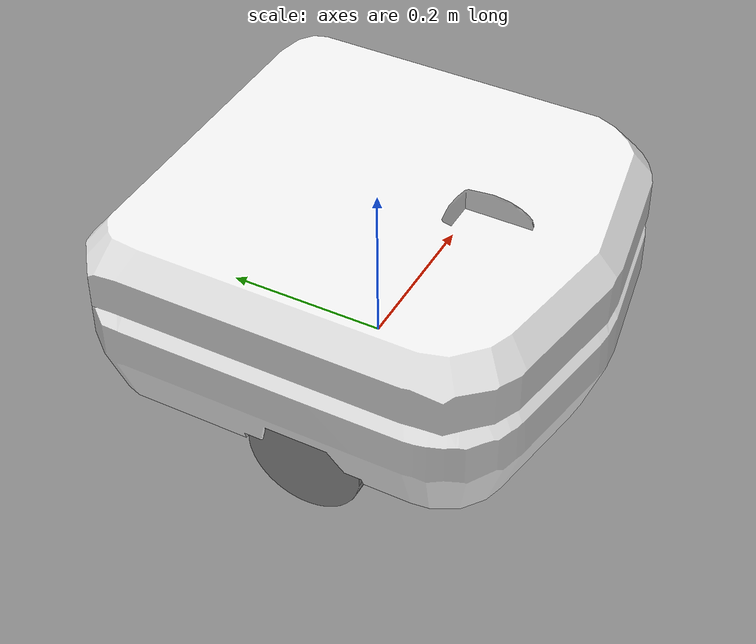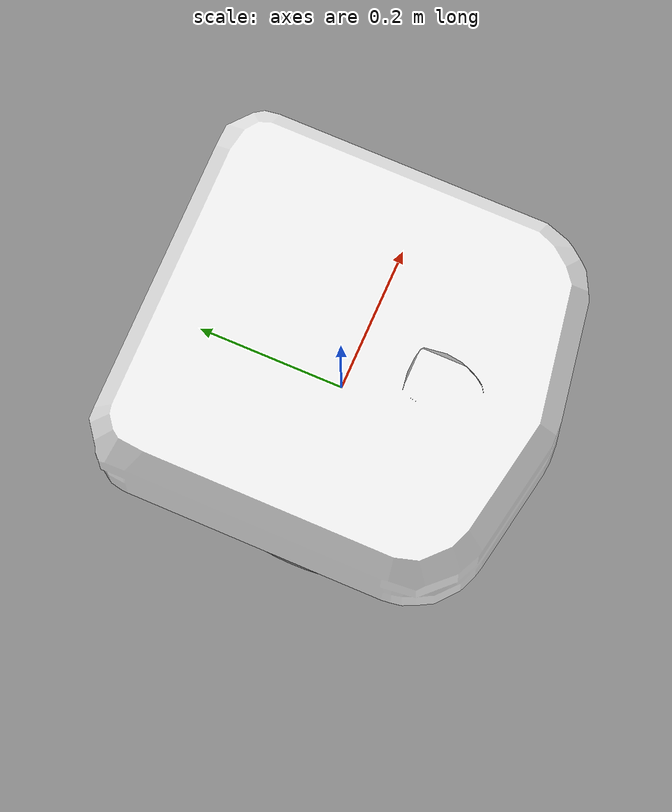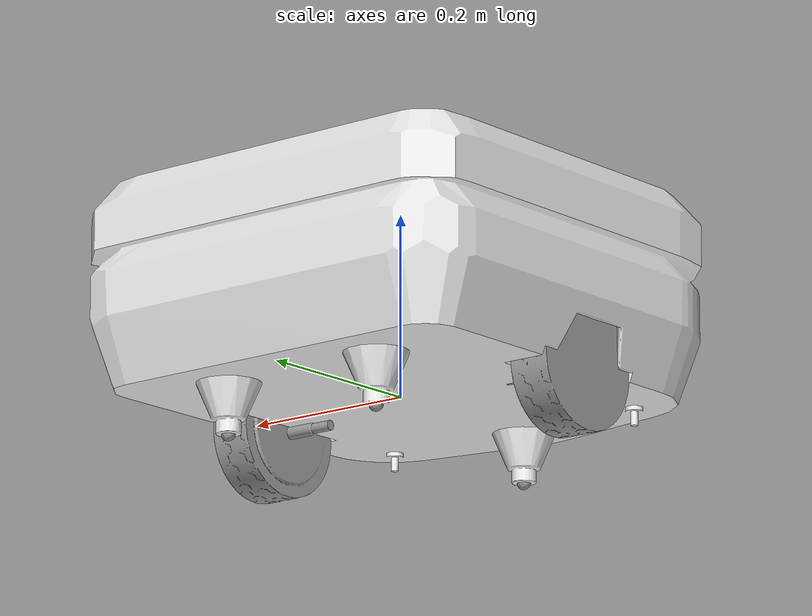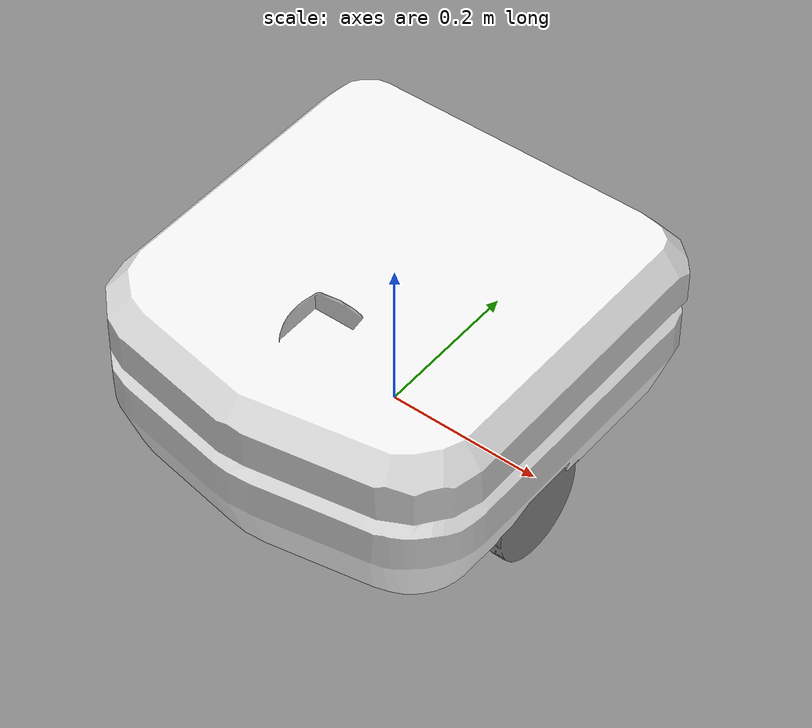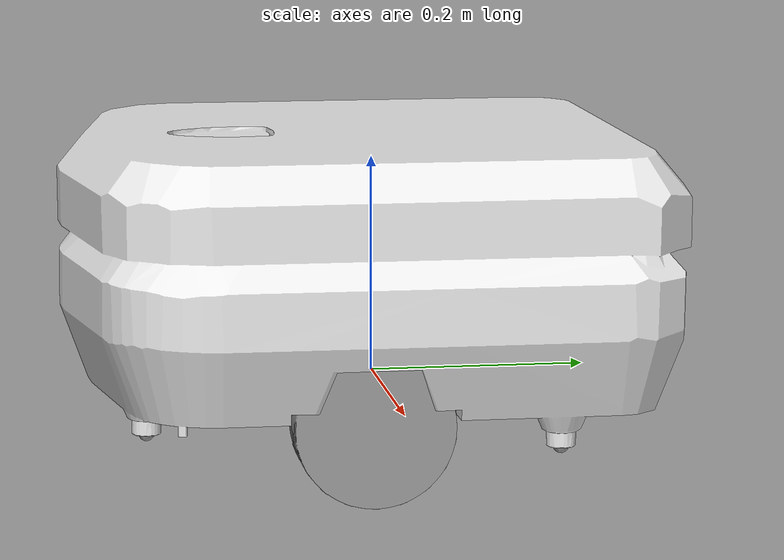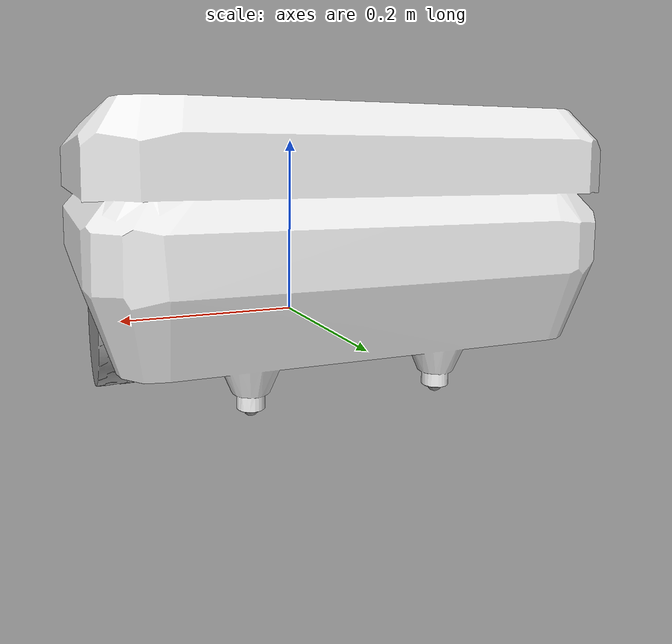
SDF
<?xml version='1.0'?>
<sdf version='1.7'>
  <plugin name="differential_drive_controller" filename="libgazebo_ros_diff_drive.so">
    <ros>
      <namespace>/</namespace>
      <argument>cmd_vel:=cmd_vel</argument>
    </ros>
    <left_joint>left_wheel_joint</left_joint>
    <right_joint>right_wheel_joint</right_joint>
    <wheel_separation>0.5</wheel_separation>
    <wheel_diameter>0.3</wheel_diameter>
    <torque>15</torque>385
    <command_topic>cmd_vel</command_topic>

    <max_wheel_torque>200</max_wheel_torque>
    <max_wheel_acceleration>10.0</max_wheel_acceleration>

    <odometry_frame>odom</odometry_frame>
    <robot_base_frame>base_link</robot_base_frame>
    <publish_odom>true</publish_odom>
    <publish_odom_tf>true</publish_odom_tf>
    <publish_wheel_tf>true</publish_wheel_tf>
  </plugin>

  <model name='cudatech_car'>
    <link name='link_0'>
      <inertial>
        <mass>5</mass>
        <inertia>
          <ixx>0</ixx>
          <ixy>0</ixy>
          <ixz>0</ixz>
          <iyy>0</iyy>
          <iyz>0</iyz>
          <izz>0</izz>
        </inertia>
        <pose>0 0 0 0 -0 0</pose>
      </inertial>
      <pose>0 0 0 1.5708 -0 0</pose>
      <gravity>1</gravity>
      <self_collide>1</self_collide>
      <kinematic>0</kinematic>
      <enable_wind>0</enable_wind>
      <visual name='visual'>
        <pose>0 0 0 0 -0 0</pose>
        <geometry>
          <mesh>
            <uri>/home/cudatech/ros2_ws/src/cudatech_description/meshes/chasis.stl</uri>
            <scale>0.001 0.001 0.001</scale>
          </mesh>
        </geometry>
        <material>
          <lighting>1</lighting>
          <script>
            <uri>file://media/materials/scripts/gazebo.material</uri>
            <name>Gazebo/White</name>
          </script>
          <shader type='pixel'>
            <normal_map>__default__</normal_map>
          </shader>
          <ambient>0.3 0.3 0.3 1</ambient>
          <diffuse>0.7 0.7 0.7 1</diffuse>
          <specular>0.01 0.01 0.01 1</specular>
          <emissive>0 0 0 1</emissive>
        </material>
        <transparency>0</transparency>
        <cast_shadows>1</cast_shadows>
      </visual>
      <collision name='collision'>
        <laser_retro>0</laser_retro>
        <max_contacts>10</max_contacts>
        <pose>0 0 0 0 -0 0</pose>
        <geometry>
          <mesh>
            <uri>/home/cudatech/ros2_ws/src/cudatech_description/meshes/chasis.stl</uri>
            <scale>0.001 0.001 0.001</scale>
          </mesh>
        </geometry>
        <surface>
          <friction>
            <ode>
              <mu>1</mu>
              <mu2>1</mu2>
              <fdir1>0 0 0</fdir1>
              <slip1>0</slip1>
              <slip2>0</slip2>
            </ode>
            <torsional>
              <coefficient>1</coefficient>
              <patch_radius>0</patch_radius>
              <surface_radius>0</surface_radius>
              <use_patch_radius>1</use_patch_radius>
              <ode>
                <slip>0</slip>
              </ode>
            </torsional>
          </friction>
          <bounce>
            <restitution_coefficient>0</restitution_coefficient>
            <threshold>1e+06</threshold>
          </bounce>
          <contact>
            <collide_without_contact>0</collide_without_contact>
            <collide_without_contact_bitmask>1</collide_without_contact_bitmask>
            <collide_bitmask>1</collide_bitmask>
            <ode>
              <soft_cfm>0</soft_cfm>
              <soft_erp>0.2</soft_erp>
              <kp>1e+13</kp>
              <kd>1</kd>
              <max_vel>0.01</max_vel>
              <min_depth>0</min_depth>
            </ode>
            <bullet>
              <split_impulse>1</split_impulse>
              <split_impulse_penetration_threshold>-0.01</split_impulse_penetration_threshold>
              <soft_cfm>0</soft_cfm>
              <soft_erp>0.2</soft_erp>
              <kp>1e+13</kp>
              <kd>1</kd>
            </bullet>
          </contact>
        </surface>
      </collision>
    </link>
    <link name='link_1'>
      <inertial>
        <mass>1</mass>
        <inertia>
          <ixx>0</ixx>
          <ixy>0</ixy>
          <ixz>0</ixz>
          <iyy>0</iyy>
          <iyz>0</iyz>
          <izz>0</izz>
        </inertia>
        <pose>0 0 0 0 -0 0</pose>
      </inertial>
      <pose>-0.2 -0.028704 0.017 -1.5708 0 1.5708</pose>
      <gravity>1</gravity>
      <self_collide>1</self_collide>
      <kinematic>0</kinematic>
      <enable_wind>0</enable_wind>
      <visual name='visual'>
        <pose>0 0 0 0 -0 0</pose>
        <geometry>
          <mesh>
            <uri>/home/cudatech/ros2_ws/src/cudatech_description/meshes/wheel.stl</uri>
            <scale>0.001 0.001 0.001</scale>
          </mesh>
        </geometry>
        <material>
          <lighting>1</lighting>
          <script>
            <uri>file://media/materials/scripts/gazebo.material</uri>
            <name>Gazebo/Grey</name>
          </script>
          <shader type='pixel'>
            <normal_map>__default__</normal_map>
          </shader>
          <ambient>0.3 0.3 0.3 1</ambient>
          <diffuse>0.7 0.7 0.7 1</diffuse>
          <specular>0.01 0.01 0.01 1</specular>
          <emissive>0 0 0 1</emissive>
        </material>
        <transparency>0</transparency>
        <cast_shadows>1</cast_shadows>
      </visual>
      <collision name='collision'>
        <laser_retro>0</laser_retro>
        <max_contacts>10</max_contacts>
        <pose>0 0 0 0 -0 0</pose>
        <geometry>
          <mesh>
            <uri>/home/cudatech/ros2_ws/src/cudatech_description/meshes/wheel.stl</uri>
            <scale>0.001 0.001 0.001</scale>
          </mesh>
        </geometry>
        <surface>
          <friction>
            <ode>
              <mu>1</mu>
              <mu2>1</mu2>
              <fdir1>0 0 0</fdir1>
              <slip1>0</slip1>
              <slip2>0</slip2>
            </ode>
            <torsional>
              <coefficient>1</coefficient>
              <patch_radius>0</patch_radius>
              <surface_radius>0</surface_radius>
              <use_patch_radius>1</use_patch_radius>
              <ode>
                <slip>0</slip>
              </ode>
            </torsional>
          </friction>
          <bounce>
            <restitution_coefficient>0</restitution_coefficient>
            <threshold>1e+06</threshold>
          </bounce>
          <contact>
            <collide_without_contact>0</collide_without_contact>
            <collide_without_contact_bitmask>1</collide_without_contact_bitmask>
            <collide_bitmask>1</collide_bitmask>
            <ode>
              <soft_cfm>0</soft_cfm>
              <soft_erp>0.2</soft_erp>
              <kp>1e+13</kp>
              <kd>1</kd>
              <max_vel>0.01</max_vel>
              <min_depth>0</min_depth>
            </ode>
            <bullet>
              <split_impulse>1</split_impulse>
              <split_impulse_penetration_threshold>-0.01</split_impulse_penetration_threshold>
              <soft_cfm>0</soft_cfm>
              <soft_erp>0.2</soft_erp>
              <kp>1e+13</kp>
              <kd>1</kd>
            </bullet>
          </contact>
        </surface>
      </collision>
    </link>
    <link name='link_1_clone'>
      <inertial>
        <mass>1</mass>
        <inertia>
          <ixx>0</ixx>
          <ixy>0</ixy>
          <ixz>0</ixz>
          <iyy>0</iyy>
          <iyz>0</iyz>
          <izz>0</izz>
        </inertia>
        <pose>0 0 0 0 -0 0</pose>
      </inertial>
      <pose>0.2 -0.028704 -0.0175 1.5708 -0 1.5708</pose>
      <gravity>1</gravity>
      <self_collide>1</self_collide>
      <kinematic>0</kinematic>
      <enable_wind>0</enable_wind>
      <visual name='visual'>
        <pose>0 0 0 0 -0 0</pose>
        <geometry>
          <mesh>
            <uri>/home/cudatech/ros2_ws/src/cudatech_description/meshes/wheel.stl</uri>
            <scale>0.001 0.001 0.001</scale>
          </mesh>
        </geometry>
        <material>
          <lighting>1</lighting>
          <script>
            <uri>file://media/materials/scripts/gazebo.material</uri>
            <name>Gazebo/Grey</name>
          </script>
          <shader type='pixel'>
            <normal_map>__default__</normal_map>
          </shader>
          <ambient>0.3 0.3 0.3 1</ambient>
          <diffuse>0.7 0.7 0.7 1</diffuse>
          <specular>0.01 0.01 0.01 1</specular>
          <emissive>0 0 0 1</emissive>
        </material>
        <transparency>0</transparency>
        <cast_shadows>1</cast_shadows>
      </visual>
      <collision name='collision'>
        <laser_retro>0</laser_retro>
        <max_contacts>10</max_contacts>
        <pose>0 0 0 0 -0 0</pose>
        <geometry>
          <mesh>
            <uri>/home/cudatech/ros2_ws/src/cudatech_description/meshes/wheel.stl</uri>
            <scale>0.001 0.001 0.001</scale>
          </mesh>
        </geometry>
        <surface>
          <friction>
            <ode>
              <mu>1</mu>
              <mu2>1</mu2>
              <fdir1>0 0 0</fdir1>
              <slip1>0</slip1>
              <slip2>0</slip2>
            </ode>
            <torsional>
              <coefficient>1</coefficient>
              <patch_radius>0</patch_radius>
              <surface_radius>0</surface_radius>
              <use_patch_radius>1</use_patch_radius>
              <ode>
                <slip>0</slip>
              </ode>
            </torsional>
          </friction>
          <bounce>
            <restitution_coefficient>0</restitution_coefficient>
            <threshold>1e+06</threshold>
          </bounce>
          <contact>
            <collide_without_contact>0</collide_without_contact>
            <collide_without_contact_bitmask>1</collide_without_contact_bitmask>
            <collide_bitmask>1</collide_bitmask>
            <ode>
              <soft_cfm>0</soft_cfm>
              <soft_erp>0.2</soft_erp>
              <kp>1e+13</kp>
              <kd>1</kd>
              <max_vel>0.01</max_vel>
              <min_depth>0</min_depth>
            </ode>
            <bullet>
              <split_impulse>1</split_impulse>
              <split_impulse_penetration_threshold>-0.01</split_impulse_penetration_threshold>
              <soft_cfm>0</soft_cfm>
              <soft_erp>0.2</soft_erp>
              <kp>1e+13</kp>
              <kd>1</kd>
            </bullet>
          </contact>
        </surface>
      </collision>
    </link>
    <link name='link_2'>
      <inertial>
        <mass>0.5</mass>
        <inertia>
          <ixx>0.166667</ixx>
          <ixy>0</ixy>
          <ixz>0</ixz>
          <iyy>0.166667</iyy>
          <iyz>0</iyz>
          <izz>0.166667</izz>
        </inertia>
        <pose>0 0 0 0 -0 0</pose>
      </inertial>
      <pose>-0 -0.21 -0.054 0 -0 0</pose>
      <gravity>1</gravity>
      <self_collide>1</self_collide>
      <kinematic>0</kinematic>
      <enable_wind>0</enable_wind>
      <visual name='visual'>
        <pose>0 0 0 0 -0 0</pose>
        <geometry>
          <mesh>
            <uri>/home/cudatech/ros2_ws/src/cudatech_description/meshes/drunk_whell.stl</uri>
            <scale>0.001 0.001 0.001</scale>
          </mesh>
        </geometry>
        <material>
          <lighting>1</lighting>
          <script>
            <uri>file://media/materials/scripts/gazebo.material</uri>
            <name>Gazebo/Grey</name>
          </script>
          <shader type='pixel'>
            <normal_map>__default__</normal_map>
          </shader>
          <ambient>0.3 0.3 0.3 1</ambient>
          <diffuse>0.7 0.7 0.7 1</diffuse>
          <specular>0.01 0.01 0.01 1</specular>
          <emissive>0 0 0 1</emissive>
        </material>
        <transparency>0</transparency>
        <cast_shadows>1</cast_shadows>
      </visual>
      <collision name='collision'>
        <laser_retro>0</laser_retro>
        <max_contacts>10</max_contacts>
        <pose>0 0 0 0 -0 0</pose>
        <geometry>
          <mesh>
            <uri>/home/cudatech/ros2_ws/src/cudatech_description/meshes/drunk_whell.stl</uri>
            <scale>0.001 0.001 0.001</scale>
          </mesh>
        </geometry>
        <surface>
          <friction>
            <ode>
              <mu>1</mu>
              <mu2>1</mu2>
              <fdir1>0 0 0</fdir1>
              <slip1>0</slip1>
              <slip2>0</slip2>
            </ode>
            <torsional>
              <coefficient>1</coefficient>
              <patch_radius>0</patch_radius>
              <surface_radius>0</surface_radius>
              <use_patch_radius>1</use_patch_radius>
              <ode>
                <slip>0</slip>
              </ode>
            </torsional>
          </friction>
          <bounce>
            <restitution_coefficient>0</restitution_coefficient>
            <threshold>1e+06</threshold>
          </bounce>
          <contact>
            <collide_without_contact>0</collide_without_contact>
            <collide_without_contact_bitmask>1</collide_without_contact_bitmask>
            <collide_bitmask>1</collide_bitmask>
            <ode>
              <soft_cfm>0</soft_cfm>
              <soft_erp>0.2</soft_erp>
              <kp>1e+13</kp>
              <kd>1</kd>
              <max_vel>0.01</max_vel>
              <min_depth>0</min_depth>
            </ode>
            <bullet>
              <split_impulse>1</split_impulse>
              <split_impulse_penetration_threshold>-0.01</split_impulse_penetration_threshold>
              <soft_cfm>0</soft_cfm>
              <soft_erp>0.2</soft_erp>
              <kp>1e+13</kp>
              <kd>1</kd>
            </bullet>
          </contact>
        </surface>
      </collision>
    </link>
    <link name='link_2_clone'>
      <inertial>
        <mass>0.5</mass>
        <inertia>
          <ixx>0.166667</ixx>
          <ixy>0</ixy>
          <ixz>0</ixz>
          <iyy>0.166667</iyy>
          <iyz>0</iyz>
          <izz>0.166667</izz>
        </inertia>
        <pose>0 0 0 0 -0 0</pose>
      </inertial>
      <pose>-0.1 0.16 -0.054 0.068559 0.025349 -0.003125</pose>
      <gravity>1</gravity>
      <self_collide>1</self_collide>
      <kinematic>0</kinematic>
      <enable_wind>0</enable_wind>
      <visual name='visual'>
        <pose>0 0 0 0 -0 0</pose>
        <geometry>
          <mesh>
            <uri>/home/cudatech/ros2_ws/src/cudatech_description/meshes/drunk_whell.stl</uri>
            <scale>0.001 0.001 0.001</scale>
          </mesh>
        </geometry>
        <material>
          <lighting>1</lighting>
          <script>
            <uri>file://media/materials/scripts/gazebo.material</uri>
            <name>Gazebo/Grey</name>
          </script>
          <shader type='pixel'>
            <normal_map>__default__</normal_map>
          </shader>
          <ambient>0.3 0.3 0.3 1</ambient>
          <diffuse>0.7 0.7 0.7 1</diffuse>
          <specular>0.01 0.01 0.01 1</specular>
          <emissive>0 0 0 1</emissive>
        </material>
        <transparency>0</transparency>
        <cast_shadows>1</cast_shadows>
      </visual>
      <collision name='collision'>
        <laser_retro>0</laser_retro>
        <max_contacts>10</max_contacts>
        <pose>0 0 0 0 -0 0</pose>
        <geometry>
          <mesh>
            <uri>/home/cudatech/ros2_ws/src/cudatech_description/meshes/drunk_whell.stl</uri>
            <scale>0.001 0.001 0.001</scale>
          </mesh>
        </geometry>
        <surface>
          <friction>
            <ode>
              <mu>1</mu>
              <mu2>1</mu2>
              <fdir1>0 0 0</fdir1>
              <slip1>0</slip1>
              <slip2>0</slip2>
            </ode>
            <torsional>
              <coefficient>1</coefficient>
              <patch_radius>0</patch_radius>
              <surface_radius>0</surface_radius>
              <use_patch_radius>1</use_patch_radius>
              <ode>
                <slip>0</slip>
              </ode>
            </torsional>
          </friction>
          <bounce>
            <restitution_coefficient>0</restitution_coefficient>
            <threshold>1e+06</threshold>
          </bounce>
          <contact>
            <collide_without_contact>0</collide_without_contact>
            <collide_without_contact_bitmask>1</collide_without_contact_bitmask>
            <collide_bitmask>1</collide_bitmask>
            <ode>
              <soft_cfm>0</soft_cfm>
              <soft_erp>0.2</soft_erp>
              <kp>1e+13</kp>
              <kd>1</kd>
              <max_vel>0.01</max_vel>
              <min_depth>0</min_depth>
            </ode>
            <bullet>
              <split_impulse>1</split_impulse>
              <split_impulse_penetration_threshold>-0.01</split_impulse_penetration_threshold>
              <soft_cfm>0</soft_cfm>
              <soft_erp>0.2</soft_erp>
              <kp>1e+13</kp>
              <kd>1</kd>
            </bullet>
          </contact>
        </surface>
      </collision>
    </link>
    <link name='link_2_clone_0'>
      <inertial>
        <mass>0.5</mass>
        <inertia>
          <ixx>0.166667</ixx>
          <ixy>0</ixy>
          <ixz>0</ixz>
          <iyy>0.166667</iyy>
          <iyz>0</iyz>
          <izz>0.166667</izz>
        </inertia>
        <pose>0 0 0 0 -0 0</pose>
      </inertial>
      <pose>0.1 0.16 -0.054 0.068559 0.025349 -0.003125</pose>
      <gravity>1</gravity>
      <self_collide>1</self_collide>
      <kinematic>0</kinematic>
      <enable_wind>0</enable_wind>
      <visual name='visual'>
        <pose>0 0 0 0 -0 0</pose>
        <geometry>
          <mesh>
            <uri>/home/cudatech/ros2_ws/src/cudatech_description/meshes/drunk_whell.stl</uri>
            <scale>0.001 0.001 0.001</scale>
          </mesh>
        </geometry>
        <material>
          <lighting>1</lighting>
          <script>
            <uri>file://media/materials/scripts/gazebo.material</uri>
            <name>Gazebo/Grey</name>
          </script>
          <shader type='pixel'>
            <normal_map>__default__</normal_map>
          </shader>
          <ambient>0.3 0.3 0.3 1</ambient>
          <diffuse>0.7 0.7 0.7 1</diffuse>
          <specular>0.01 0.01 0.01 1</specular>
          <emissive>0 0 0 1</emissive>
        </material>
        <transparency>0</transparency>
        <cast_shadows>1</cast_shadows>
      </visual>
      <collision name='collision'>
        <laser_retro>0</laser_retro>
        <max_contacts>10</max_contacts>
        <pose>0 0 0 0 -0 0</pose>
        <geometry>
          <mesh>
            <uri>/home/cudatech/ros2_ws/src/cudatech_description/meshes/drunk_whell.stl</uri>
            <scale>0.001 0.001 0.001</scale>
          </mesh>
        </geometry>
        <surface>
          <friction>
            <ode>
              <mu>1</mu>
              <mu2>1</mu2>
              <fdir1>0 0 0</fdir1>
              <slip1>0</slip1>
              <slip2>0</slip2>
            </ode>
            <torsional>
              <coefficient>1</coefficient>
              <patch_radius>0</patch_radius>
              <surface_radius>0</surface_radius>
              <use_patch_radius>1</use_patch_radius>
              <ode>
                <slip>0</slip>
              </ode>
            </torsional>
          </friction>
          <bounce>
            <restitution_coefficient>0</restitution_coefficient>
            <threshold>1e+06</threshold>
          </bounce>
          <contact>
            <collide_without_contact>0</collide_without_contact>
            <collide_without_contact_bitmask>1</collide_without_contact_bitmask>
            <collide_bitmask>1</collide_bitmask>
            <ode>
              <soft_cfm>0</soft_cfm>
              <soft_erp>0.2</soft_erp>
              <kp>1e+13</kp>
              <kd>1</kd>
              <max_vel>0.01</max_vel>
              <min_depth>0</min_depth>
            </ode>
            <bullet>
              <split_impulse>1</split_impulse>
              <split_impulse_penetration_threshold>-0.01</split_impulse_penetration_threshold>
              <soft_cfm>0</soft_cfm>
              <soft_erp>0.2</soft_erp>
              <kp>1e+13</kp>
              <kd>1</kd>
            </bullet>
          </contact>
        </surface>
      </collision>
    </link>
    <joint name='drunk_wheel_3_joint' type='revolute'>
      <parent>link_0</parent>
      <child>link_2_clone_0</child>
      <pose>0 0 0 0 -0 0</pose>
      <axis>
        <xyz>1 1 1</xyz>
        <limit>
          <lower>-1.79769e+308</lower>
          <upper>1.79769e+308</upper>
          <effort>-1</effort>
          <velocity>-1</velocity>
        </limit>
        <dynamics>
          <spring_reference>0</spring_reference>
          <spring_stiffness>0</spring_stiffness>
          <damping>0</damping>
          <friction>0</friction>
        </dynamics>
      </axis>
      <physics>
        <ode>
          <limit>
            <cfm>0</cfm>
            <erp>0.2</erp>
          </limit>
          <suspension>
            <cfm>0</cfm>
            <erp>0.2</erp>
          </suspension>
        </ode>
      </physics>
    </joint>
    <joint name='drunk_wheel_2_joint' type='revolute'>
      <parent>link_0</parent>
      <child>link_2_clone</child>
      <pose>0 0 0 0 -0 0</pose>
      <axis>
        <xyz>1 1 1</xyz>
        <limit>
          <lower>-1.79769e+308</lower>
          <upper>1.79769e+308</upper>
          <effort>-1</effort>
          <velocity>-1</velocity>
        </limit>
        <dynamics>
          <spring_reference>0</spring_reference>
          <spring_stiffness>0</spring_stiffness>
          <damping>0</damping>
          <friction>0</friction>
        </dynamics>
      </axis>
      <physics>
        <ode>
          <limit>
            <cfm>0</cfm>
            <erp>0.2</erp>
          </limit>
          <suspension>
            <cfm>0</cfm>
            <erp>0.2</erp>
          </suspension>
        </ode>
      </physics>
    </joint>
    <joint name='drunk_wheel_1_joint' type='revolute'>
      <parent>link_0</parent>
      <child>link_2</child>
      <pose>0 0 0 0 -0 0</pose>
      <axis>
        <xyz>1 1 1</xyz>
        <limit>
          <lower>-1e+16</lower>
          <upper>1e+16</upper>
          <effort>-1</effort>
          <velocity>-1</velocity>
        </limit>
        <dynamics>
          <spring_reference>0</spring_reference>
          <spring_stiffness>0</spring_stiffness>
          <damping>0</damping>
          <friction>0</friction>
        </dynamics>
      </axis>
      <physics>
        <ode>
          <limit>
            <cfm>0</cfm>
            <erp>0.2</erp>
          </limit>
          <suspension>
            <cfm>0</cfm>
            <erp>0.2</erp>
          </suspension>
        </ode>
      </physics>
    </joint>
    <joint name='left_wheel_joint' type='revolute'>
      <parent>link_0</parent>
      <child>link_1</child>
      <pose>0 0 0 0 -0 0</pose>
      <axis>
        <xyz>0 0 -1</xyz>
        <limit>
          <lower>-1.79769e+308</lower>
          <upper>1.79769e+308</upper>
          <effort>-1</effort>
          <velocity>-1</velocity>
        </limit>
        <dynamics>
          <spring_reference>0</spring_reference>
          <spring_stiffness>0</spring_stiffness>
          <damping>0</damping>
          <friction>0</friction>
        </dynamics>
      </axis>
      <physics>
        <ode>
          <limit>
            <cfm>0</cfm>
            <erp>0.2</erp>
          </limit>
          <suspension>
            <cfm>0</cfm>
            <erp>0.2</erp>
          </suspension>
        </ode>
      </physics>
    </joint>
    <joint name='right_wheel_joint' type='revolute'>
      <parent>link_0</parent>
      <child>link_1_clone</child>
      <pose>0 0 0 0 -0 0</pose>
      <axis>
        <xyz>0 0 -1</xyz>
        <limit>
          <lower>-1.79769e+308</lower>
          <upper>1.79769e+308</upper>
          <effort>-1</effort>
          <velocity>-1</velocity>
        </limit>
        <dynamics>
          <spring_reference>0</spring_reference>
          <spring_stiffness>0</spring_stiffness>
          <damping>0</damping>
          <friction>0</friction>
        </dynamics>
      </axis>
      <physics>
        <ode>
          <limit>
            <cfm>0</cfm>
            <erp>0.2</erp>
          </limit>
          <suspension>
            <cfm>0</cfm>
            <erp>0.2</erp>
          </suspension>
        </ode>
      </physics>
    </joint>
    <static>0</static>
    <allow_auto_disable>1</allow_auto_disable>
  </model>
</sdf>
